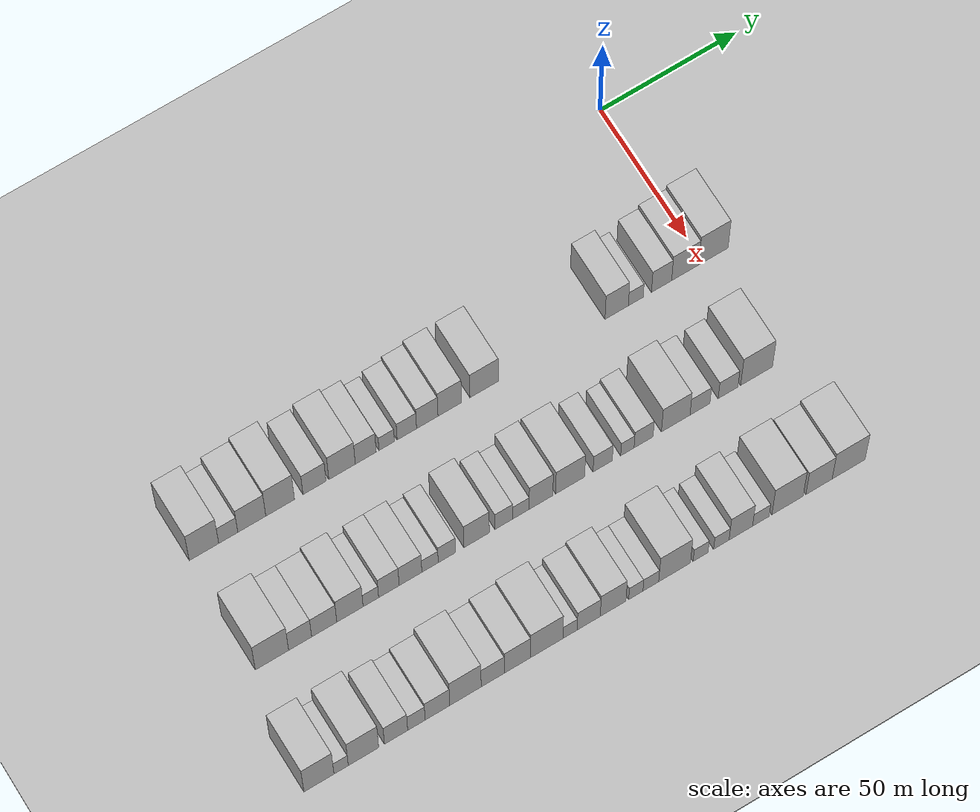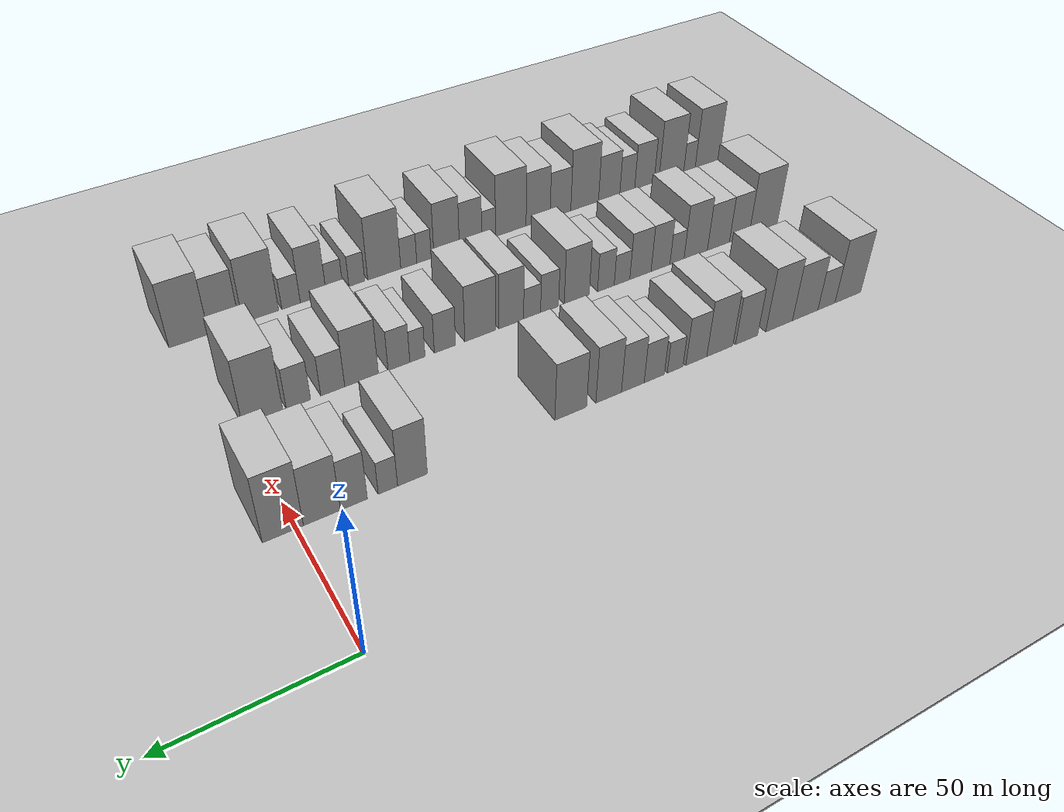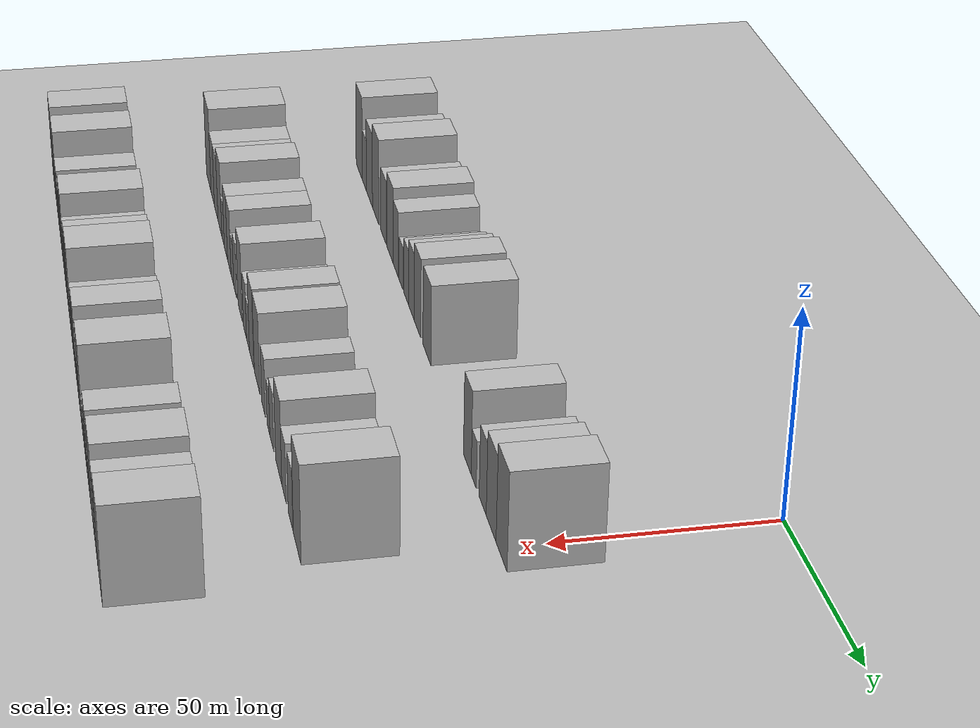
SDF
<sdf version="1.6">
 <world name="default">
  <include><name>ground_plane_1</name><uri>model://HANNAS_ground_plane</uri></include>
  <include>
   <name>ground_plane_2</name>
   <uri>model://HANNAS_ground_plane</uri>
   <pose>100 0 0  0 0 0</pose>
  </include>
  <model name="building_18">
   <static>1</static>
   <pose>50.0000 -178.6368 0 0.000000 0.000000 0.000000</pose>
   <link name="link">
    <pose>0 0 12.00 0 0 0</pose>
    <collision name="collision"><geometry><box><size>20.0000 10.3165 24.0000</size></box></geometry></collision>
    <visual name="visual">
     <cast_shadows>0</cast_shadows>
     <geometry><box><size>20.0000 10.3165 24.0000</size></box></geometry>
     <material>
      <script>
       <uri>model://HANNAS_wall/materials/scripts</uri>
       <uri>model://HANNAS_wall/materials/textures</uri>
       <name>vrc/HANNAS_wall</name>
      </script>
     </material>
    </visual>
   </link>
  </model>
  <model name="building_19">
   <static>1</static>
   <pose>50.0000 -170.1284 0 0.000000 0.000000 0.000000</pose>
   <link name="link">
    <pose>0 0 7.50 0 0 0</pose>
    <collision name="collision"><geometry><box><size>20.0000 6.7004 15.0000</size></box></geometry></collision>
    <visual name="visual">
     <cast_shadows>0</cast_shadows>
     <geometry><box><size>20.0000 6.7004 15.0000</size></box></geometry>
     <material>
      <script>
       <uri>model://HANNAS_wall/materials/scripts</uri>
       <uri>model://HANNAS_wall/materials/textures</uri>
       <name>vrc/HANNAS_wall</name>
      </script>
     </material>
    </visual>
   </link>
  </model>
  <model name="building_20">
   <static>1</static>
   <pose>50.0000 -161.8568 0 0.000000 0.000000 0.000000</pose>
   <link name="link">
    <pose>0 0 10.50 0 0 0</pose>
    <collision name="collision"><geometry><box><size>20.0000 9.8428 21.0000</size></box></geometry></collision>
    <visual name="visual">
     <cast_shadows>0</cast_shadows>
     <geometry><box><size>20.0000 9.8428 21.0000</size></box></geometry>
     <material>
      <script>
       <uri>model://HANNAS_wall/materials/scripts</uri>
       <uri>model://HANNAS_wall/materials/textures</uri>
       <name>vrc/HANNAS_wall</name>
      </script>
     </material>
    </visual>
   </link>
  </model>
  <model name="building_21">
   <static>1</static>
   <pose>50.0000 -151.8738 0 0.000000 0.000000 0.000000</pose>
   <link name="link">
    <pose>0 0 12.00 0 0 0</pose>
    <collision name="collision"><geometry><box><size>20.0000 10.1233 24.0000</size></box></geometry></collision>
    <visual name="visual">
     <cast_shadows>0</cast_shadows>
     <geometry><box><size>20.0000 10.1233 24.0000</size></box></geometry>
     <material>
      <script>
       <uri>model://HANNAS_wall/materials/scripts</uri>
       <uri>model://HANNAS_wall/materials/textures</uri>
       <name>vrc/HANNAS_wall</name>
      </script>
     </material>
    </visual>
   </link>
  </model>
  <model name="building_22">
   <static>1</static>
   <pose>50.0000 -139.7485 0 0.000000 0.000000 0.000000</pose>
   <link name="link">
    <pose>0 0 9.00 0 0 0</pose>
    <collision name="collision"><geometry><box><size>20.0000 8.1273 18.0000</size></box></geometry></collision>
    <visual name="visual">
     <cast_shadows>0</cast_shadows>
     <geometry><box><size>20.0000 8.1273 18.0000</size></box></geometry>
     <material>
      <script>
       <uri>model://HANNAS_wall/materials/scripts</uri>
       <uri>model://HANNAS_wall/materials/textures</uri>
       <name>vrc/HANNAS_wall</name>
      </script>
     </material>
    </visual>
   </link>
  </model>
  <model name="building_23">
   <static>1</static>
   <pose>50.0000 -129.9938 0 0.000000 0.000000 0.000000</pose>
   <link name="link">
    <pose>0 0 10.50 0 0 0</pose>
    <collision name="collision"><geometry><box><size>20.0000 9.3820 21.0000</size></box></geometry></collision>
    <visual name="visual">
     <cast_shadows>0</cast_shadows>
     <geometry><box><size>20.0000 9.3820 21.0000</size></box></geometry>
     <material>
      <script>
       <uri>model://HANNAS_wall/materials/scripts</uri>
       <uri>model://HANNAS_wall/materials/textures</uri>
       <name>vrc/HANNAS_wall</name>
      </script>
     </material>
    </visual>
   </link>
  </model>
  <model name="building_24">
   <static>1</static>
   <pose>50.0000 -121.5938 0 0.000000 0.000000 0.000000</pose>
   <link name="link">
    <pose>0 0 9.00 0 0 0</pose>
    <collision name="collision"><geometry><box><size>20.0000 7.4181 18.0000</size></box></geometry></collision>
    <visual name="visual">
     <cast_shadows>0</cast_shadows>
     <geometry><box><size>20.0000 7.4181 18.0000</size></box></geometry>
     <material>
      <script>
       <uri>model://HANNAS_wall/materials/scripts</uri>
       <uri>model://HANNAS_wall/materials/textures</uri>
       <name>vrc/HANNAS_wall</name>
      </script>
     </material>
    </visual>
   </link>
  </model>
  <model name="building_25">
   <static>1</static>
   <pose>50.0000 -114.1592 0 0.000000 0.000000 0.000000</pose>
   <link name="link">
    <pose>0 0 6.00 0 0 0</pose>
    <collision name="collision"><geometry><box><size>20.0000 5.4511 12.0000</size></box></geometry></collision>
    <visual name="visual">
     <cast_shadows>0</cast_shadows>
     <geometry><box><size>20.0000 5.4511 12.0000</size></box></geometry>
     <material>
      <script>
       <uri>model://HANNAS_wall/materials/scripts</uri>
       <uri>model://HANNAS_wall/materials/textures</uri>
       <name>vrc/HANNAS_wall</name>
      </script>
     </material>
    </visual>
   </link>
  </model>
  <model name="building_26">
   <static>1</static>
   <pose>50.0000 -106.9795 0 0.000000 0.000000 0.000000</pose>
   <link name="link">
    <pose>0 0 7.50 0 0 0</pose>
    <collision name="collision"><geometry><box><size>20.0000 6.9083 15.0000</size></box></geometry></collision>
    <visual name="visual">
     <cast_shadows>0</cast_shadows>
     <geometry><box><size>20.0000 6.9083 15.0000</size></box></geometry>
     <material>
      <script>
       <uri>model://HANNAS_wall/materials/scripts</uri>
       <uri>model://HANNAS_wall/materials/textures</uri>
       <name>vrc/HANNAS_wall</name>
      </script>
     </material>
    </visual>
   </link>
  </model>
  <model name="building_27">
   <static>1</static>
   <pose>50.0000 -99.7024 0 0.000000 0.000000 0.000000</pose>
   <link name="link">
    <pose>0 0 9.00 0 0 0</pose>
    <collision name="collision"><geometry><box><size>20.0000 7.6459 18.0000</size></box></geometry></collision>
    <visual name="visual">
     <cast_shadows>0</cast_shadows>
     <geometry><box><size>20.0000 7.6459 18.0000</size></box></geometry>
     <material>
      <script>
       <uri>model://HANNAS_wall/materials/scripts</uri>
       <uri>model://HANNAS_wall/materials/textures</uri>
       <name>vrc/HANNAS_wall</name>
      </script>
     </material>
    </visual>
   </link>
  </model>
  <model name="building_28">
   <static>1</static>
   <pose>50.0000 -91.6660 0 0.000000 0.000000 0.000000</pose>
   <link name="link">
    <pose>0 0 10.50 0 0 0</pose>
    <collision name="collision"><geometry><box><size>20.0000 8.4268 21.0000</size></box></geometry></collision>
    <visual name="visual">
     <cast_shadows>0</cast_shadows>
     <geometry><box><size>20.0000 8.4268 21.0000</size></box></geometry>
     <material>
      <script>
       <uri>model://HANNAS_wall/materials/scripts</uri>
       <uri>model://HANNAS_wall/materials/textures</uri>
       <name>vrc/HANNAS_wall</name>
      </script>
     </material>
    </visual>
   </link>
  </model>
  <model name="building_29">
   <static>1</static>
   <pose>50.0000 -79.3613 0 0.000000 0.000000 0.000000</pose>
   <link name="link">
    <pose>0 0 10.50 0 0 0</pose>
    <collision name="collision"><geometry><box><size>20.0000 10.1827 21.0000</size></box></geometry></collision>
    <visual name="visual">
     <cast_shadows>0</cast_shadows>
     <geometry><box><size>20.0000 10.1827 21.0000</size></box></geometry>
     <material>
      <script>
       <uri>model://HANNAS_wall/materials/scripts</uri>
       <uri>model://HANNAS_wall/materials/textures</uri>
       <name>vrc/HANNAS_wall</name>
      </script>
     </material>
    </visual>
   </link>
  </model>
  <model name="building_30">
   <static>1</static>
   <pose>50.0000 -31.5972 0 0.000000 0.000000 0.000000</pose>
   <link name="link">
    <pose>0 0 10.50 0 0 0</pose>
    <collision name="collision"><geometry><box><size>20.0000 8.4485 21.0000</size></box></geometry></collision>
    <visual name="visual">
     <cast_shadows>0</cast_shadows>
     <geometry><box><size>20.0000 8.4485 21.0000</size></box></geometry>
     <material>
      <script>
       <uri>model://HANNAS_wall/materials/scripts</uri>
       <uri>model://HANNAS_wall/materials/textures</uri>
       <name>vrc/HANNAS_wall</name>
      </script>
     </material>
    </visual>
   </link>
  </model>
  <model name="building_31">
   <static>1</static>
   <pose>50.0000 -24.6672 0 0.000000 0.000000 0.000000</pose>
   <link name="link">
    <pose>0 0 6.00 0 0 0</pose>
    <collision name="collision"><geometry><box><size>20.0000 5.4116 12.0000</size></box></geometry></collision>
    <visual name="visual">
     <cast_shadows>0</cast_shadows>
     <geometry><box><size>20.0000 5.4116 12.0000</size></box></geometry>
     <material>
      <script>
       <uri>model://HANNAS_wall/materials/scripts</uri>
       <uri>model://HANNAS_wall/materials/textures</uri>
       <name>vrc/HANNAS_wall</name>
      </script>
     </material>
    </visual>
   </link>
  </model>
  <model name="building_32">
   <static>1</static>
   <pose>50.0000 -15.2973 0 0.000000 0.000000 0.000000</pose>
   <link name="link">
    <pose>0 0 9.00 0 0 0</pose>
    <collision name="collision"><geometry><box><size>20.0000 7.3282 18.0000</size></box></geometry></collision>
    <visual name="visual">
     <cast_shadows>0</cast_shadows>
     <geometry><box><size>20.0000 7.3282 18.0000</size></box></geometry>
     <material>
      <script>
       <uri>model://HANNAS_wall/materials/scripts</uri>
       <uri>model://HANNAS_wall/materials/textures</uri>
       <name>vrc/HANNAS_wall</name>
      </script>
     </material>
    </visual>
   </link>
  </model>
  <model name="building_33">
   <static>1</static>
   <pose>50.0000 -6.6849 0 0.000000 0.000000 0.000000</pose>
   <link name="link">
    <pose>0 0 10.50 0 0 0</pose>
    <collision name="collision"><geometry><box><size>20.0000 9.8966 21.0000</size></box></geometry></collision>
    <visual name="visual">
     <cast_shadows>0</cast_shadows>
     <geometry><box><size>20.0000 9.8966 21.0000</size></box></geometry>
     <material>
      <script>
       <uri>model://HANNAS_wall/materials/scripts</uri>
       <uri>model://HANNAS_wall/materials/textures</uri>
       <name>vrc/HANNAS_wall</name>
      </script>
     </material>
    </visual>
   </link>
  </model>
  <model name="building_34">
   <static>1</static>
   <pose>50.0000 3.6107 0 0.000000 0.000000 0.000000</pose>
   <link name="link">
    <pose>0 0 12.00 0 0 0</pose>
    <collision name="collision"><geometry><box><size>20.0000 10.6946 24.0000</size></box></geometry></collision>
    <visual name="visual">
     <cast_shadows>0</cast_shadows>
     <geometry><box><size>20.0000 10.6946 24.0000</size></box></geometry>
     <material>
      <script>
       <uri>model://HANNAS_wall/materials/scripts</uri>
       <uri>model://HANNAS_wall/materials/textures</uri>
       <name>vrc/HANNAS_wall</name>
      </script>
     </material>
    </visual>
   </link>
  </model>
  <model name="building_99">
   <static>1</static>
   <pose>90.0000 -178.5330 0 0.000000 0.000000 0.000000</pose>
   <link name="link">
    <pose>0 0 12.00 0 0 0</pose>
    <collision name="collision"><geometry><box><size>20.0000 11.6398 24.0000</size></box></geometry></collision>
    <visual name="visual">
     <cast_shadows>0</cast_shadows>
     <geometry><box><size>20.0000 11.6398 24.0000</size></box></geometry>
     <material>
      <script>
       <uri>model://HANNAS_wall/materials/scripts</uri>
       <uri>model://HANNAS_wall/materials/textures</uri>
       <name>vrc/HANNAS_wall</name>
      </script>
     </material>
    </visual>
   </link>
  </model>
  <model name="building_100">
   <static>1</static>
   <pose>90.0000 -168.6894 0 0.000000 0.000000 0.000000</pose>
   <link name="link">
    <pose>0 0 9.00 0 0 0</pose>
    <collision name="collision"><geometry><box><size>20.0000 8.0473 18.0000</size></box></geometry></collision>
    <visual name="visual">
     <cast_shadows>0</cast_shadows>
     <geometry><box><size>20.0000 8.0473 18.0000</size></box></geometry>
     <material>
      <script>
       <uri>model://HANNAS_wall/materials/scripts</uri>
       <uri>model://HANNAS_wall/materials/textures</uri>
       <name>vrc/HANNAS_wall</name>
      </script>
     </material>
    </visual>
   </link>
  </model>
  <model name="building_101">
   <static>1</static>
   <pose>90.0000 -160.2539 0 0.000000 0.000000 0.000000</pose>
   <link name="link">
    <pose>0 0 9.00 0 0 0</pose>
    <collision name="collision"><geometry><box><size>20.0000 8.8237 18.0000</size></box></geometry></collision>
    <visual name="visual">
     <cast_shadows>0</cast_shadows>
     <geometry><box><size>20.0000 8.8237 18.0000</size></box></geometry>
     <material>
      <script>
       <uri>model://HANNAS_wall/materials/scripts</uri>
       <uri>model://HANNAS_wall/materials/textures</uri>
       <name>vrc/HANNAS_wall</name>
      </script>
     </material>
    </visual>
   </link>
  </model>
  <model name="building_102">
   <static>1</static>
   <pose>90.0000 -151.2362 0 0.000000 0.000000 0.000000</pose>
   <link name="link">
    <pose>0 0 10.50 0 0 0</pose>
    <collision name="collision"><geometry><box><size>20.0000 9.2117 21.0000</size></box></geometry></collision>
    <visual name="visual">
     <cast_shadows>0</cast_shadows>
     <geometry><box><size>20.0000 9.2117 21.0000</size></box></geometry>
     <material>
      <script>
       <uri>model://HANNAS_wall/materials/scripts</uri>
       <uri>model://HANNAS_wall/materials/textures</uri>
       <name>vrc/HANNAS_wall</name>
      </script>
     </material>
    </visual>
   </link>
  </model>
  <model name="building_103">
   <static>1</static>
   <pose>90.0000 -143.9008 0 0.000000 0.000000 0.000000</pose>
   <link name="link">
    <pose>0 0 6.00 0 0 0</pose>
    <collision name="collision"><geometry><box><size>20.0000 5.4592 12.0000</size></box></geometry></collision>
    <visual name="visual">
     <cast_shadows>0</cast_shadows>
     <geometry><box><size>20.0000 5.4592 12.0000</size></box></geometry>
     <material>
      <script>
       <uri>model://HANNAS_wall/materials/scripts</uri>
       <uri>model://HANNAS_wall/materials/textures</uri>
       <name>vrc/HANNAS_wall</name>
      </script>
     </material>
    </visual>
   </link>
  </model>
  <model name="building_104">
   <static>1</static>
   <pose>90.0000 -137.5581 0 0.000000 0.000000 0.000000</pose>
   <link name="link">
    <pose>0 0 9.00 0 0 0</pose>
    <collision name="collision"><geometry><box><size>20.0000 7.2261 18.0000</size></box></geometry></collision>
    <visual name="visual">
     <cast_shadows>0</cast_shadows>
     <geometry><box><size>20.0000 7.2261 18.0000</size></box></geometry>
     <material>
      <script>
       <uri>model://HANNAS_wall/materials/scripts</uri>
       <uri>model://HANNAS_wall/materials/textures</uri>
       <name>vrc/HANNAS_wall</name>
      </script>
     </material>
    </visual>
   </link>
  </model>
  <model name="building_105">
   <static>1</static>
   <pose>90.0000 -129.9407 0 0.000000 0.000000 0.000000</pose>
   <link name="link">
    <pose>0 0 9.00 0 0 0</pose>
    <collision name="collision"><geometry><box><size>20.0000 8.0087 18.0000</size></box></geometry></collision>
    <visual name="visual">
     <cast_shadows>0</cast_shadows>
     <geometry><box><size>20.0000 8.0087 18.0000</size></box></geometry>
     <material>
      <script>
       <uri>model://HANNAS_wall/materials/scripts</uri>
       <uri>model://HANNAS_wall/materials/textures</uri>
       <name>vrc/HANNAS_wall</name>
      </script>
     </material>
    </visual>
   </link>
  </model>
  <model name="building_106">
   <static>1</static>
   <pose>90.0000 -123.0445 0 0.000000 0.000000 0.000000</pose>
   <link name="link">
    <pose>0 0 6.00 0 0 0</pose>
    <collision name="collision"><geometry><box><size>20.0000 5.7837 12.0000</size></box></geometry></collision>
    <visual name="visual">
     <cast_shadows>0</cast_shadows>
     <geometry><box><size>20.0000 5.7837 12.0000</size></box></geometry>
     <material>
      <script>
       <uri>model://HANNAS_wall/materials/scripts</uri>
       <uri>model://HANNAS_wall/materials/textures</uri>
       <name>vrc/HANNAS_wall</name>
      </script>
     </material>
    </visual>
   </link>
  </model>
  <model name="building_107">
   <static>1</static>
   <pose>90.0000 -117.0955 0 0.000000 0.000000 0.000000</pose>
   <link name="link">
    <pose>0 0 7.50 0 0 0</pose>
    <collision name="collision"><geometry><box><size>20.0000 6.1143 15.0000</size></box></geometry></collision>
    <visual name="visual">
     <cast_shadows>0</cast_shadows>
     <geometry><box><size>20.0000 6.1143 15.0000</size></box></geometry>
     <material>
      <script>
       <uri>model://HANNAS_wall/materials/scripts</uri>
       <uri>model://HANNAS_wall/materials/textures</uri>
       <name>vrc/HANNAS_wall</name>
      </script>
     </material>
    </visual>
   </link>
  </model>
  <model name="building_108">
   <static>1</static>
   <pose>90.0000 -106.5436 0 0.000000 0.000000 0.000000</pose>
   <link name="link">
    <pose>0 0 10.50 0 0 0</pose>
    <collision name="collision"><geometry><box><size>20.0000 8.9895 21.0000</size></box></geometry></collision>
    <visual name="visual">
     <cast_shadows>0</cast_shadows>
     <geometry><box><size>20.0000 8.9895 21.0000</size></box></geometry>
     <material>
      <script>
       <uri>model://HANNAS_wall/materials/scripts</uri>
       <uri>model://HANNAS_wall/materials/textures</uri>
       <name>vrc/HANNAS_wall</name>
      </script>
     </material>
    </visual>
   </link>
  </model>
  <model name="building_109">
   <static>1</static>
   <pose>90.0000 -96.9042 0 0.000000 0.000000 0.000000</pose>
   <link name="link">
    <pose>0 0 7.50 0 0 0</pose>
    <collision name="collision"><geometry><box><size>20.0000 6.2893 15.0000</size></box></geometry></collision>
    <visual name="visual">
     <cast_shadows>0</cast_shadows>
     <geometry><box><size>20.0000 6.2893 15.0000</size></box></geometry>
     <material>
      <script>
       <uri>model://HANNAS_wall/materials/scripts</uri>
       <uri>model://HANNAS_wall/materials/textures</uri>
       <name>vrc/HANNAS_wall</name>
      </script>
     </material>
    </visual>
   </link>
  </model>
  <model name="building_110">
   <static>1</static>
   <pose>90.0000 -90.8162 0 0.000000 0.000000 0.000000</pose>
   <link name="link">
    <pose>0 0 6.00 0 0 0</pose>
    <collision name="collision"><geometry><box><size>20.0000 5.8867 12.0000</size></box></geometry></collision>
    <visual name="visual">
     <cast_shadows>0</cast_shadows>
     <geometry><box><size>20.0000 5.8867 12.0000</size></box></geometry>
     <material>
      <script>
       <uri>model://HANNAS_wall/materials/scripts</uri>
       <uri>model://HANNAS_wall/materials/textures</uri>
       <name>vrc/HANNAS_wall</name>
      </script>
     </material>
    </visual>
   </link>
  </model>
  <model name="building_111">
   <static>1</static>
   <pose>90.0000 -83.6538 0 0.000000 0.000000 0.000000</pose>
   <link name="link">
    <pose>0 0 10.50 0 0 0</pose>
    <collision name="collision"><geometry><box><size>20.0000 8.4380 21.0000</size></box></geometry></collision>
    <visual name="visual">
     <cast_shadows>0</cast_shadows>
     <geometry><box><size>20.0000 8.4380 21.0000</size></box></geometry>
     <material>
      <script>
       <uri>model://HANNAS_wall/materials/scripts</uri>
       <uri>model://HANNAS_wall/materials/textures</uri>
       <name>vrc/HANNAS_wall</name>
      </script>
     </material>
    </visual>
   </link>
  </model>
  <model name="building_112">
   <static>1</static>
   <pose>90.0000 -73.2528 0 0.000000 0.000000 0.000000</pose>
   <link name="link">
    <pose>0 0 10.50 0 0 0</pose>
    <collision name="collision"><geometry><box><size>20.0000 10.3641 21.0000</size></box></geometry></collision>
    <visual name="visual">
     <cast_shadows>0</cast_shadows>
     <geometry><box><size>20.0000 10.3641 21.0000</size></box></geometry>
     <material>
      <script>
       <uri>model://HANNAS_wall/materials/scripts</uri>
       <uri>model://HANNAS_wall/materials/textures</uri>
       <name>vrc/HANNAS_wall</name>
      </script>
     </material>
    </visual>
   </link>
  </model>
  <model name="building_113">
   <static>1</static>
   <pose>90.0000 -61.6180 0 0.000000 0.000000 0.000000</pose>
   <link name="link">
    <pose>0 0 7.50 0 0 0</pose>
    <collision name="collision"><geometry><box><size>20.0000 6.9055 15.0000</size></box></geometry></collision>
    <visual name="visual">
     <cast_shadows>0</cast_shadows>
     <geometry><box><size>20.0000 6.9055 15.0000</size></box></geometry>
     <material>
      <script>
       <uri>model://HANNAS_wall/materials/scripts</uri>
       <uri>model://HANNAS_wall/materials/textures</uri>
       <name>vrc/HANNAS_wall</name>
      </script>
     </material>
    </visual>
   </link>
  </model>
  <model name="building_114">
   <static>1</static>
   <pose>90.0000 -52.7577 0 0.000000 0.000000 0.000000</pose>
   <link name="link">
    <pose>0 0 6.00 0 0 0</pose>
    <collision name="collision"><geometry><box><size>20.0000 4.8150 12.0000</size></box></geometry></collision>
    <visual name="visual">
     <cast_shadows>0</cast_shadows>
     <geometry><box><size>20.0000 4.8150 12.0000</size></box></geometry>
     <material>
      <script>
       <uri>model://HANNAS_wall/materials/scripts</uri>
       <uri>model://HANNAS_wall/materials/textures</uri>
       <name>vrc/HANNAS_wall</name>
      </script>
     </material>
    </visual>
   </link>
  </model>
  <model name="building_115">
   <static>1</static>
   <pose>90.0000 -46.9347 0 0.000000 0.000000 0.000000</pose>
   <link name="link">
    <pose>0 0 7.50 0 0 0</pose>
    <collision name="collision"><geometry><box><size>20.0000 6.8310 15.0000</size></box></geometry></collision>
    <visual name="visual">
     <cast_shadows>0</cast_shadows>
     <geometry><box><size>20.0000 6.8310 15.0000</size></box></geometry>
     <material>
      <script>
       <uri>model://HANNAS_wall/materials/scripts</uri>
       <uri>model://HANNAS_wall/materials/textures</uri>
       <name>vrc/HANNAS_wall</name>
      </script>
     </material>
    </visual>
   </link>
  </model>
  <model name="building_116">
   <static>1</static>
   <pose>90.0000 -35.3704 0 0.000000 0.000000 0.000000</pose>
   <link name="link">
    <pose>0 0 10.50 0 0 0</pose>
    <collision name="collision"><geometry><box><size>20.0000 10.2976 21.0000</size></box></geometry></collision>
    <visual name="visual">
     <cast_shadows>0</cast_shadows>
     <geometry><box><size>20.0000 10.2976 21.0000</size></box></geometry>
     <material>
      <script>
       <uri>model://HANNAS_wall/materials/scripts</uri>
       <uri>model://HANNAS_wall/materials/textures</uri>
       <name>vrc/HANNAS_wall</name>
      </script>
     </material>
    </visual>
   </link>
  </model>
  <model name="building_117">
   <static>1</static>
   <pose>90.0000 -26.6261 0 0.000000 0.000000 0.000000</pose>
   <link name="link">
    <pose>0 0 7.50 0 0 0</pose>
    <collision name="collision"><geometry><box><size>20.0000 7.1910 15.0000</size></box></geometry></collision>
    <visual name="visual">
     <cast_shadows>0</cast_shadows>
     <geometry><box><size>20.0000 7.1910 15.0000</size></box></geometry>
     <material>
      <script>
       <uri>model://HANNAS_wall/materials/scripts</uri>
       <uri>model://HANNAS_wall/materials/textures</uri>
       <name>vrc/HANNAS_wall</name>
      </script>
     </material>
    </visual>
   </link>
  </model>
  <model name="building_118">
   <static>1</static>
   <pose>90.0000 -16.4664 0 0.000000 0.000000 0.000000</pose>
   <link name="link">
    <pose>0 0 7.50 0 0 0</pose>
    <collision name="collision"><geometry><box><size>20.0000 7.1284 15.0000</size></box></geometry></collision>
    <visual name="visual">
     <cast_shadows>0</cast_shadows>
     <geometry><box><size>20.0000 7.1284 15.0000</size></box></geometry>
     <material>
      <script>
       <uri>model://HANNAS_wall/materials/scripts</uri>
       <uri>model://HANNAS_wall/materials/textures</uri>
       <name>vrc/HANNAS_wall</name>
      </script>
     </material>
    </visual>
   </link>
  </model>
  <model name="building_119">
   <static>1</static>
   <pose>90.0000 -6.1324 0 0.000000 0.000000 0.000000</pose>
   <link name="link">
    <pose>0 0 12.00 0 0 0</pose>
    <collision name="collision"><geometry><box><size>20.0000 11.5397 24.0000</size></box></geometry></collision>
    <visual name="visual">
     <cast_shadows>0</cast_shadows>
     <geometry><box><size>20.0000 11.5397 24.0000</size></box></geometry>
     <material>
      <script>
       <uri>model://HANNAS_wall/materials/scripts</uri>
       <uri>model://HANNAS_wall/materials/textures</uri>
       <name>vrc/HANNAS_wall</name>
      </script>
     </material>
    </visual>
   </link>
  </model>
  <model name="building_184">
   <static>1</static>
   <pose>130.0000 -186.0380 0 0.000000 0.000000 0.000000</pose>
   <link name="link">
    <pose>0 0 12.00 0 0 0</pose>
    <collision name="collision"><geometry><box><size>20.0000 10.4420 24.0000</size></box></geometry></collision>
    <visual name="visual">
     <cast_shadows>0</cast_shadows>
     <geometry><box><size>20.0000 10.4420 24.0000</size></box></geometry>
     <material>
      <script>
       <uri>model://HANNAS_wall/materials/scripts</uri>
       <uri>model://HANNAS_wall/materials/textures</uri>
       <name>vrc/HANNAS_wall</name>
      </script>
     </material>
    </visual>
   </link>
  </model>
  <model name="building_185">
   <static>1</static>
   <pose>130.0000 -178.3352 0 0.000000 0.000000 0.000000</pose>
   <link name="link">
    <pose>0 0 6.00 0 0 0</pose>
    <collision name="collision"><geometry><box><size>20.0000 4.9636 12.0000</size></box></geometry></collision>
    <visual name="visual">
     <cast_shadows>0</cast_shadows>
     <geometry><box><size>20.0000 4.9636 12.0000</size></box></geometry>
     <material>
      <script>
       <uri>model://HANNAS_wall/materials/scripts</uri>
       <uri>model://HANNAS_wall/materials/textures</uri>
       <name>vrc/HANNAS_wall</name>
      </script>
     </material>
    </visual>
   </link>
  </model>
  <model name="building_186">
   <static>1</static>
   <pose>130.0000 -170.5677 0 0.000000 0.000000 0.000000</pose>
   <link name="link">
    <pose>0 0 12.00 0 0 0</pose>
    <collision name="collision"><geometry><box><size>20.0000 10.5714 24.0000</size></box></geometry></collision>
    <visual name="visual">
     <cast_shadows>0</cast_shadows>
     <geometry><box><size>20.0000 10.5714 24.0000</size></box></geometry>
     <material>
      <script>
       <uri>model://HANNAS_wall/materials/scripts</uri>
       <uri>model://HANNAS_wall/materials/textures</uri>
       <name>vrc/HANNAS_wall</name>
      </script>
     </material>
    </visual>
   </link>
  </model>
  <model name="building_187">
   <static>1</static>
   <pose>130.0000 -159.2322 0 0.000000 0.000000 0.000000</pose>
   <link name="link">
    <pose>0 0 9.00 0 0 0</pose>
    <collision name="collision"><geometry><box><size>20.0000 8.0995 18.0000</size></box></geometry></collision>
    <visual name="visual">
     <cast_shadows>0</cast_shadows>
     <geometry><box><size>20.0000 8.0995 18.0000</size></box></geometry>
     <material>
      <script>
       <uri>model://HANNAS_wall/materials/scripts</uri>
       <uri>model://HANNAS_wall/materials/textures</uri>
       <name>vrc/HANNAS_wall</name>
      </script>
     </material>
    </visual>
   </link>
  </model>
  <model name="building_188">
   <static>1</static>
   <pose>130.0000 -152.1411 0 0.000000 0.000000 0.000000</pose>
   <link name="link">
    <pose>0 0 7.50 0 0 0</pose>
    <collision name="collision"><geometry><box><size>20.0000 6.0826 15.0000</size></box></geometry></collision>
    <visual name="visual">
     <cast_shadows>0</cast_shadows>
     <geometry><box><size>20.0000 6.0826 15.0000</size></box></geometry>
     <material>
      <script>
       <uri>model://HANNAS_wall/materials/scripts</uri>
       <uri>model://HANNAS_wall/materials/textures</uri>
       <name>vrc/HANNAS_wall</name>
      </script>
     </material>
    </visual>
   </link>
  </model>
  <model name="building_189">
   <static>1</static>
   <pose>130.0000 -144.7878 0 0.000000 0.000000 0.000000</pose>
   <link name="link">
    <pose>0 0 9.00 0 0 0</pose>
    <collision name="collision"><geometry><box><size>20.0000 8.6240 18.0000</size></box></geometry></collision>
    <visual name="visual">
     <cast_shadows>0</cast_shadows>
     <geometry><box><size>20.0000 8.6240 18.0000</size></box></geometry>
     <material>
      <script>
       <uri>model://HANNAS_wall/materials/scripts</uri>
       <uri>model://HANNAS_wall/materials/textures</uri>
       <name>vrc/HANNAS_wall</name>
      </script>
     </material>
    </visual>
   </link>
  </model>
  <model name="building_190">
   <static>1</static>
   <pose>130.0000 -134.9619 0 0.000000 0.000000 0.000000</pose>
   <link name="link">
    <pose>0 0 12.00 0 0 0</pose>
    <collision name="collision"><geometry><box><size>20.0000 11.0280 24.0000</size></box></geometry></collision>
    <visual name="visual">
     <cast_shadows>0</cast_shadows>
     <geometry><box><size>20.0000 11.0280 24.0000</size></box></geometry>
     <material>
      <script>
       <uri>model://HANNAS_wall/materials/scripts</uri>
       <uri>model://HANNAS_wall/materials/textures</uri>
       <name>vrc/HANNAS_wall</name>
      </script>
     </material>
    </visual>
   </link>
  </model>
  <model name="building_191">
   <static>1</static>
   <pose>130.0000 -125.4027 0 0.000000 0.000000 0.000000</pose>
   <link name="link">
    <pose>0 0 9.00 0 0 0</pose>
    <collision name="collision"><geometry><box><size>20.0000 8.0904 18.0000</size></box></geometry></collision>
    <visual name="visual">
     <cast_shadows>0</cast_shadows>
     <geometry><box><size>20.0000 8.0904 18.0000</size></box></geometry>
     <material>
      <script>
       <uri>model://HANNAS_wall/materials/scripts</uri>
       <uri>model://HANNAS_wall/materials/textures</uri>
       <name>vrc/HANNAS_wall</name>
      </script>
     </material>
    </visual>
   </link>
  </model>
  <model name="building_192">
   <static>1</static>
   <pose>130.0000 -116.7554 0 0.000000 0.000000 0.000000</pose>
   <link name="link">
    <pose>0 0 10.50 0 0 0</pose>
    <collision name="collision"><geometry><box><size>20.0000 9.2042 21.0000</size></box></geometry></collision>
    <visual name="visual">
     <cast_shadows>0</cast_shadows>
     <geometry><box><size>20.0000 9.2042 21.0000</size></box></geometry>
     <material>
      <script>
       <uri>model://HANNAS_wall/materials/scripts</uri>
       <uri>model://HANNAS_wall/materials/textures</uri>
       <name>vrc/HANNAS_wall</name>
      </script>
     </material>
    </visual>
   </link>
  </model>
  <model name="building_193">
   <static>1</static>
   <pose>130.0000 -106.4161 0 0.000000 0.000000 0.000000</pose>
   <link name="link">
    <pose>0 0 12.00 0 0 0</pose>
    <collision name="collision"><geometry><box><size>20.0000 11.4743 24.0000</size></box></geometry></collision>
    <visual name="visual">
     <cast_shadows>0</cast_shadows>
     <geometry><box><size>20.0000 11.4743 24.0000</size></box></geometry>
     <material>
      <script>
       <uri>model://HANNAS_wall/materials/scripts</uri>
       <uri>model://HANNAS_wall/materials/textures</uri>
       <name>vrc/HANNAS_wall</name>
      </script>
     </material>
    </visual>
   </link>
  </model>
  <model name="building_194">
   <static>1</static>
   <pose>130.0000 -98.1546 0 0.000000 0.000000 0.000000</pose>
   <link name="link">
    <pose>0 0 6.00 0 0 0</pose>
    <collision name="collision"><geometry><box><size>20.0000 5.0488 12.0000</size></box></geometry></collision>
    <visual name="visual">
     <cast_shadows>0</cast_shadows>
     <geometry><box><size>20.0000 5.0488 12.0000</size></box></geometry>
     <material>
      <script>
       <uri>model://HANNAS_wall/materials/scripts</uri>
       <uri>model://HANNAS_wall/materials/textures</uri>
       <name>vrc/HANNAS_wall</name>
      </script>
     </material>
    </visual>
   </link>
  </model>
  <model name="building_195">
   <static>1</static>
   <pose>130.0000 -91.5407 0 0.000000 0.000000 0.000000</pose>
   <link name="link">
    <pose>0 0 9.00 0 0 0</pose>
    <collision name="collision"><geometry><box><size>20.0000 8.1789 18.0000</size></box></geometry></collision>
    <visual name="visual">
     <cast_shadows>0</cast_shadows>
     <geometry><box><size>20.0000 8.1789 18.0000</size></box></geometry>
     <material>
      <script>
       <uri>model://HANNAS_wall/materials/scripts</uri>
       <uri>model://HANNAS_wall/materials/textures</uri>
       <name>vrc/HANNAS_wall</name>
      </script>
     </material>
    </visual>
   </link>
  </model>
  <model name="building_196">
   <static>1</static>
   <pose>130.0000 -82.8974 0 0.000000 0.000000 0.000000</pose>
   <link name="link">
    <pose>0 0 10.50 0 0 0</pose>
    <collision name="collision"><geometry><box><size>20.0000 9.1078 21.0000</size></box></geometry></collision>
    <visual name="visual">
     <cast_shadows>0</cast_shadows>
     <geometry><box><size>20.0000 9.1078 21.0000</size></box></geometry>
     <material>
      <script>
       <uri>model://HANNAS_wall/materials/scripts</uri>
       <uri>model://HANNAS_wall/materials/textures</uri>
       <name>vrc/HANNAS_wall</name>
      </script>
     </material>
    </visual>
   </link>
  </model>
  <model name="building_197">
   <static>1</static>
   <pose>130.0000 -74.8144 0 0.000000 0.000000 0.000000</pose>
   <link name="link">
    <pose>0 0 6.00 0 0 0</pose>
    <collision name="collision"><geometry><box><size>20.0000 5.0581 12.0000</size></box></geometry></collision>
    <visual name="visual">
     <cast_shadows>0</cast_shadows>
     <geometry><box><size>20.0000 5.0581 12.0000</size></box></geometry>
     <material>
      <script>
       <uri>model://HANNAS_wall/materials/scripts</uri>
       <uri>model://HANNAS_wall/materials/textures</uri>
       <name>vrc/HANNAS_wall</name>
      </script>
     </material>
    </visual>
   </link>
  </model>
  <model name="building_198">
   <static>1</static>
   <pose>130.0000 -69.4889 0 0.000000 0.000000 0.000000</pose>
   <link name="link">
    <pose>0 0 6.00 0 0 0</pose>
    <collision name="collision"><geometry><box><size>20.0000 5.5929 12.0000</size></box></geometry></collision>
    <visual name="visual">
     <cast_shadows>0</cast_shadows>
     <geometry><box><size>20.0000 5.5929 12.0000</size></box></geometry>
     <material>
      <script>
       <uri>model://HANNAS_wall/materials/scripts</uri>
       <uri>model://HANNAS_wall/materials/textures</uri>
       <name>vrc/HANNAS_wall</name>
      </script>
     </material>
    </visual>
   </link>
  </model>
  <model name="building_199">
   <static>1</static>
   <pose>130.0000 -61.0401 0 0.000000 0.000000 0.000000</pose>
   <link name="link">
    <pose>0 0 12.00 0 0 0</pose>
    <collision name="collision"><geometry><box><size>20.0000 11.3046 24.0000</size></box></geometry></collision>
    <visual name="visual">
     <cast_shadows>0</cast_shadows>
     <geometry><box><size>20.0000 11.3046 24.0000</size></box></geometry>
     <material>
      <script>
       <uri>model://HANNAS_wall/materials/scripts</uri>
       <uri>model://HANNAS_wall/materials/textures</uri>
       <name>vrc/HANNAS_wall</name>
      </script>
     </material>
    </visual>
   </link>
  </model>
  <model name="building_200">
   <static>1</static>
   <pose>130.0000 -51.7268 0 0.000000 0.000000 0.000000</pose>
   <link name="link">
    <pose>0 0 6.00 0 0 0</pose>
    <collision name="collision"><geometry><box><size>20.0000 5.3221 12.0000</size></box></geometry></collision>
    <visual name="visual">
     <cast_shadows>0</cast_shadows>
     <geometry><box><size>20.0000 5.3221 12.0000</size></box></geometry>
     <material>
      <script>
       <uri>model://HANNAS_wall/materials/scripts</uri>
       <uri>model://HANNAS_wall/materials/textures</uri>
       <name>vrc/HANNAS_wall</name>
      </script>
     </material>
    </visual>
   </link>
  </model>
  <model name="building_201">
   <static>1</static>
   <pose>130.0000 -44.3089 0 0.000000 0.000000 0.000000</pose>
   <link name="link">
    <pose>0 0 6.00 0 0 0</pose>
    <collision name="collision"><geometry><box><size>20.0000 5.5136 12.0000</size></box></geometry></collision>
    <visual name="visual">
     <cast_shadows>0</cast_shadows>
     <geometry><box><size>20.0000 5.5136 12.0000</size></box></geometry>
     <material>
      <script>
       <uri>model://HANNAS_wall/materials/scripts</uri>
       <uri>model://HANNAS_wall/materials/textures</uri>
       <name>vrc/HANNAS_wall</name>
      </script>
     </material>
    </visual>
   </link>
  </model>
  <model name="building_202">
   <static>1</static>
   <pose>130.0000 -37.3354 0 0.000000 0.000000 0.000000</pose>
   <link name="link">
    <pose>0 0 10.50 0 0 0</pose>
    <collision name="collision"><geometry><box><size>20.0000 8.4333 21.0000</size></box></geometry></collision>
    <visual name="visual">
     <cast_shadows>0</cast_shadows>
     <geometry><box><size>20.0000 8.4333 21.0000</size></box></geometry>
     <material>
      <script>
       <uri>model://HANNAS_wall/materials/scripts</uri>
       <uri>model://HANNAS_wall/materials/textures</uri>
       <name>vrc/HANNAS_wall</name>
      </script>
     </material>
    </visual>
   </link>
  </model>
  <model name="building_203">
   <static>1</static>
   <pose>130.0000 -30.1452 0 0.000000 0.000000 0.000000</pose>
   <link name="link">
    <pose>0 0 6.00 0 0 0</pose>
    <collision name="collision"><geometry><box><size>20.0000 5.9471 12.0000</size></box></geometry></collision>
    <visual name="visual">
     <cast_shadows>0</cast_shadows>
     <geometry><box><size>20.0000 5.9471 12.0000</size></box></geometry>
     <material>
      <script>
       <uri>model://HANNAS_wall/materials/scripts</uri>
       <uri>model://HANNAS_wall/materials/textures</uri>
       <name>vrc/HANNAS_wall</name>
      </script>
     </material>
    </visual>
   </link>
  </model>
  <model name="building_204">
   <static>1</static>
   <pose>130.0000 -20.5475 0 0.000000 0.000000 0.000000</pose>
   <link name="link">
    <pose>0 0 12.00 0 0 0</pose>
    <collision name="collision"><geometry><box><size>20.0000 11.2483 24.0000</size></box></geometry></collision>
    <visual name="visual">
     <cast_shadows>0</cast_shadows>
     <geometry><box><size>20.0000 11.2483 24.0000</size></box></geometry>
     <material>
      <script>
       <uri>model://HANNAS_wall/materials/scripts</uri>
       <uri>model://HANNAS_wall/materials/textures</uri>
       <name>vrc/HANNAS_wall</name>
      </script>
     </material>
    </visual>
   </link>
  </model>
  <model name="building_205">
   <static>1</static>
   <pose>130.0000 -9.1779 0 0.000000 0.000000 0.000000</pose>
   <link name="link">
    <pose>0 0 10.50 0 0 0</pose>
    <collision name="collision"><geometry><box><size>20.0000 9.4910 21.0000</size></box></geometry></collision>
    <visual name="visual">
     <cast_shadows>0</cast_shadows>
     <geometry><box><size>20.0000 9.4910 21.0000</size></box></geometry>
     <material>
      <script>
       <uri>model://HANNAS_wall/materials/scripts</uri>
       <uri>model://HANNAS_wall/materials/textures</uri>
       <name>vrc/HANNAS_wall</name>
      </script>
     </material>
    </visual>
   </link>
  </model>
  <model name="building_206">
   <static>1</static>
   <pose>130.0000 1.5165 0 0.000000 0.000000 0.000000</pose>
   <link name="link">
    <pose>0 0 12.00 0 0 0</pose>
    <collision name="collision"><geometry><box><size>20.0000 11.8978 24.0000</size></box></geometry></collision>
    <visual name="visual">
     <cast_shadows>0</cast_shadows>
     <geometry><box><size>20.0000 11.8978 24.0000</size></box></geometry>
     <material>
      <script>
       <uri>model://HANNAS_wall/materials/scripts</uri>
       <uri>model://HANNAS_wall/materials/textures</uri>
       <name>vrc/HANNAS_wall</name>
      </script>
     </material>
    </visual>
   </link>
  </model>
 </world>
</sdf>
